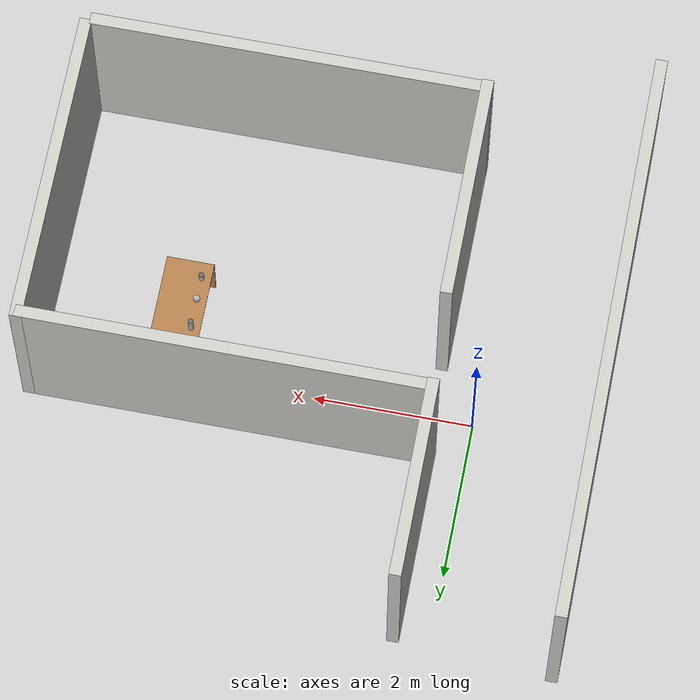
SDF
<?xml version='1.0'?>
<sdf version='1.6'>
<world name='laboratorio'>
  <gui>
    <camera name="user_camera">
      <pose>5.315925 -1.285646 1.856583 0 0.307999 2.827192</pose>
    </camera>
  </gui>
  <include>
    <uri>model://ground_plane</uri>
  </include>
  <include>
    <uri>model://sun</uri>
  </include>
  <include>
    <static>1</static>
    <pose>4.09 -1.25 0 0 0 0</pose>
    <uri>model://office_desk</uri>
    <name>office_desk01</name>
  </include>
  <include>
    <static>0</static>
    <pose>3.6 -0.35 0.85 0 0 0</pose>
    <uri>model://hsr_pringles</uri>
    <name>hsr_pringles_01</name>
  </include>
  <include>
    <static>0</static>
    <pose>3.6 -0.7 0.85 0 0 1</pose>
    <uri>model://apple</uri>
    <name>apple_01</name>
  </include>
  <include>
    <static>0</static>
    <pose>3.6 -1.0 0.85 0 0 0 1</pose>
    <uri>model://hsr_coke</uri>
    <name>hsr_coke_01</name>
  </include>
  <model name='biorobotica'>
    <pose frame=''>1.98298 -0.56 0 0 -0 0</pose>
    <link name='Wall_0'>
      <collision name='Wall_0_Collision'>
        <geometry>
          <box>
            <size>7.25 0.15 2.5</size>
          </box>
        </geometry>
        <pose frame=''>0 0 1.25 0 -0 0</pose>
      </collision>
      <visual name='Wall_0_Visual'>
        <pose frame=''>0 0 1.25 0 -0 0</pose>
        <geometry>
          <box>
            <size>7.25 0.15 2.5</size>
          </box>
        </geometry>
        <material>
          <script>
            <uri>file://media/materials/scripts/gazebo.material</uri>
            <name>Gazebo/CeilingTiled</name>
          </script>
          <ambient>0.921569 0.807843 0.615686 1</ambient>
        </material>
      </visual>
      <pose frame=''>-3.50298 0 0 0 -0 1.5708</pose>
    </link>
    <link name='Wall_2'>
      <collision name='Wall_2_Collision'>
        <geometry>
          <box>
            <size>2.85174 0.15 2.5</size>
          </box>
        </geometry>
        <pose frame=''>0 0 1.25 0 -0 0</pose>
      </collision>
      <visual name='Wall_2_Visual'>
        <pose frame=''>0 0 1.25 0 -0 0</pose>
        <geometry>
          <box>
            <size>2.85174 0.15 2.5</size>
          </box>
        </geometry>
        <material>
          <script>
            <uri>file://media/materials/scripts/gazebo.material</uri>
            <name>Gazebo/CeilingTiled</name>
          </script>
          <ambient>0.921569 0.807843 0.615686 1</ambient>
        </material>
      </visual>
      <pose frame=''>-1.47298 -1.53987 0 0 -0 1.5708</pose>
    </link>
    <link name='Wall_4'>
      <collision name='Wall_4_Collision'>
        <geometry>
          <box>
            <size>5 0.15 2.5</size>
          </box>
        </geometry>
        <pose frame=''>0 0 1.25 0 -0 0</pose>
      </collision>
      <visual name='Wall_4_Visual'>
        <pose frame=''>0 0 1.25 0 -0 0</pose>
        <geometry>
          <box>
            <size>5 0.15 2.5</size>
          </box>
        </geometry>
        <material>
          <script>
            <uri>file://media/materials/scripts/gazebo.material</uri>
            <name>Gazebo/CeilingTiled</name>
          </script>
          <ambient>0.921569 0.807843 0.615686 1</ambient>
        </material>
      </visual>
      <pose frame=''>0.952018 -2.87553 0 0 -0 0</pose>
    </link>
    <link name='Wall_6'>
      <collision name='Wall_6_Collision'>
        <geometry>
          <box>
            <size>4 0.15 2.5</size>
          </box>
        </geometry>
        <pose frame=''>0 0 1.25 0 -0 0</pose>
      </collision>
      <visual name='Wall_6_Visual'>
        <pose frame=''>0 0 1.25 0 -0 0</pose>
        <geometry>
          <box>
            <size>4 0.15 2.5</size>
          </box>
        </geometry>
        <material>
          <script>
            <uri>file://media/materials/scripts/gazebo.material</uri>
            <name>Gazebo/CeilingTiled</name>
          </script>
          <ambient>0.921569 0.807843 0.615686 1</ambient>
        </material>
      </visual>
      <pose frame=''>3.50254 -0.8542 0 0 -0 1.5708</pose>
    </link>
    <link name='Wall_7'>
      <collision name='Wall_7_Collision'>
        <geometry>
          <box>
            <size>5.0294 0.15 2.5</size>
          </box>
        </geometry>
        <pose frame=''>0 0 1.25 0 -0 0</pose>
      </collision>
      <visual name='Wall_7_Visual'>
        <pose frame=''>0 0 1.25 0 -0 0</pose>
        <geometry>
          <box>
            <size>5.0294 0.15 2.5</size>
          </box>
        </geometry>
        <material>
          <script>
            <uri>file://media/materials/scripts/gazebo.material</uri>
            <name>Gazebo/CeilingTiled</name>
          </script>
          <ambient>0.921569 0.807843 0.615686 1</ambient>
        </material>
      </visual>
      <pose frame=''>1.06328 1.0708 0 0 -0 3.14159</pose>
    </link>
    <link name='Wall_9'>
      <collision name='Wall_9_Collision'>
        <geometry>
          <box>
            <size>2.5 0.15 2.5</size>
          </box>
        </geometry>
        <pose frame=''>0 0 1.25 0 -0 0</pose>
      </collision>
      <visual name='Wall_9_Visual'>
        <pose frame=''>0 0 1.25 0 -0 0</pose>
        <geometry>
          <box>
            <size>2.5 0.15 2.5</size>
          </box>
        </geometry>
        <material>
          <script>
            <uri>file://media/materials/scripts/gazebo.material</uri>
            <name>Gazebo/CeilingTiled</name>
          </script>
          <ambient>0.921569 0.807843 0.615686 1</ambient>
        </material>
      </visual>
      <pose frame=''>-1.52498 2.23535 0 0 0 -1.5708</pose>
    </link>
    <static>1</static>
  </model>
</world>
</sdf>

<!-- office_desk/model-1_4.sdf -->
<sdf version="1.4">
    <model name='office_desk'>
      <link name='link'>
        <pose>0.0 0.0 0.0 0 0 0</pose>
        <inertial>
          <mass>10.0</mass>
          <inertia>
            <ixx>1</ixx>
            <ixy>0</ixy>
            <ixz>0</ixz>
            <iyy>1</iyy>
            <iyz>0</iyz>
            <izz>1</izz>
          </inertia>
        </inertial>
        <visual name='top_board'>
          <pose>-0.3 0.6 0.69 0 0 0</pose>
          <geometry>
            <box>
              <size>0.6 1.2 0.02</size>
            </box>
          </geometry>
          <material>
            <script>
              <uri>model://base_materials/wood/scripts/wood.material</uri>
              <name>base_materials/dark_wood</name>
            </script>
          </material>
        </visual>
        <collision name='collision_top_board'>
          <pose>-0.3 0.6 0.69 0 0 0</pose>
          <geometry>
            <box>
              <size>0.6 1.2 0.02</size>
            </box>
          </geometry>
          <max_contacts>10</max_contacts>
          <surface>
            <bounce/>
            <friction>
              <ode/>
            </friction>
            <contact>
              <ode/>
            </contact>
          </surface>
        </collision>
        <visual name='left_board'>
          <pose>-0.3 0.01 0.34 0 0 0</pose>
          <geometry>
            <box>
              <size>0.6 0.02 0.68</size>
            </box>
          </geometry>
          <material>
            <script>
              <uri>model://base_materials/wood/scripts/wood.material</uri>
              <name>base_materials/dark_wood</name>
            </script>
          </material>
        </visual>
        <collision name='collision_left_board'>
          <pose>-0.3 0.01 0.34 0 0 0</pose>
          <geometry>
            <box>
              <size>0.6 0.02 0.68</size>
            </box>
          </geometry>
          <max_contacts>10</max_contacts>
          <surface>
            <bounce/>
            <friction>
              <ode/>
            </friction>
            <contact>
              <ode/>
            </contact>
          </surface>
        </collision>
        <visual name='right_board'>
          <pose>-0.3 1.19 0.34 0 0 0</pose>
          <geometry>
            <box>
              <size>0.6 0.02 0.68</size>
            </box>
          </geometry>
          <material>
            <script>
              <uri>model://base_materials/wood/scripts/wood.material</uri>
              <name>base_materials/dark_wood</name>
            </script>
          </material>
        </visual>
        <collision name='collision_right_board'>
          <pose>-0.3 1.19 0.34 0 0 0</pose>
          <geometry>
            <box>
              <size>0.6 0.02 0.68</size>
            </box>
          </geometry>
          <max_contacts>10</max_contacts>
          <surface>
            <bounce/>
            <friction>
              <ode/>
            </friction>
            <contact>
              <ode/>
            </contact>
          </surface>
        </collision>
        <visual name='center_board'>
          <pose>-0.14 0.6 0.49 0 0 0</pose>
          <geometry>
            <box>
              <size>0.02 1.16 0.40</size>
            </box>
          </geometry>
          <material>
            <script>
              <uri>model://base_materials/wood/scripts/wood.material</uri>
              <name>base_materials/dark_wood</name>
            </script>
          </material>
        </visual>
        <collision name='ollision_center_board'>
          <pose>-0.14 0.6 0.49 0 0 0</pose>
          <geometry>
            <box>
              <size>0.02 1.16 0.40</size>
            </box>
          </geometry>
          <max_contacts>10</max_contacts>
          <surface>
            <bounce/>
            <friction>
              <ode/>
            </friction>
            <contact>
              <ode/>
            </contact>
          </surface>
        </collision>
        <velocity_decay>
          <linear>0</linear>
          <angular>0</angular>
        </velocity_decay>
        <self_collide>0</self_collide>
        <kinematic>0</kinematic>
        <gravity>1</gravity>
      </link>
      <static>1</static>
    </model>
</sdf>

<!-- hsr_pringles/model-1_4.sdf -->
<sdf version="1.4">
    <model name='hsr_pringles'>
      <link name='link'>
        <pose>0 0 0 0 0 0</pose>
        <inertial>
          <mass>0.19</mass>
          <inertia>
            <ixx>0.004491</ixx>
            <ixy>0</ixy>
            <ixz>0</ixz>
            <iyy>0.004491</iyy>
            <iyz>0</iyz>
            <izz>0.000103</izz>
          </inertia>
        </inertial>
        <visual name='hsr_pringles'>
          <pose>0.0 0.0 0.0 0 0 0</pose>
          <geometry>
            <mesh>
              <uri>model://hsr_pringles/meshes/hsr_pringles.dae</uri>
            </mesh>
          </geometry>
          <material/>
        </visual>
        <collision name='hsr_pringles'>
          <pose>0.0 0.0 0.0 0 0 0</pose>
          <geometry>
            <cylinder>
              <radius>0.033</radius>
              <length>0.225</length>
            </cylinder>
          </geometry>
          <max_contacts>10</max_contacts>
          <surface>
            <bounce>
              <restitution_coefficient>0.2</restitution_coefficient>
              <threshold>0</threshold>
            </bounce>
            <friction>
              <ode/>
            </friction>
            <contact>
              <ode>
                <max_vel>10</max_vel>
              </ode>
            </contact>
          </surface>
        </collision>
        <velocity_decay>
          <linear>0</linear>
          <angular>0</angular>
        </velocity_decay>
        <self_collide>0</self_collide>
        <kinematic>0</kinematic>
        <gravity>1</gravity>
      </link>
      <static>0</static>
    </model>
</sdf>

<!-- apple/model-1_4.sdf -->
<sdf version="1.4">
    <model name='apple'>
      <link name='link'>
        <pose>0 0 0 0 0 0</pose>
        <inertial>
          <mass>0.3</mass>
          <inertia>
            <ixx>0.000243</ixx>
            <ixy>0</ixy>
            <ixz>0</ixz>
            <iyy>0.000243</iyy>
            <iyz>0</iyz>
            <izz>0.000243</izz>
          </inertia>
        </inertial>
        <visual name='apple'>
          <pose>0.0 0.0 0.0 0 0 0</pose>
          <geometry>
            <mesh>
              <uri>model://apple/meshes/apple.dae</uri>
            </mesh>
          </geometry>
          <material/>
        </visual>
        <collision name='apple'>
          <pose>0.0 0.0 0.0 0 0 0</pose>
          <geometry>
            <sphere>
              <radius>0.045</radius>
            </sphere>
          </geometry>
          <max_contacts>10</max_contacts>
          <surface>
            <bounce>
              <restitution_coefficient>0.2</restitution_coefficient>
              <threshold>0</threshold>
            </bounce>
            <friction>
              <ode/>
            </friction>
            <contact>
              <ode>
                <max_vel>10</max_vel>
              </ode>
            </contact>
          </surface>
        </collision>
        <velocity_decay>
          <linear>0</linear>
          <angular>0</angular>
        </velocity_decay>
        <self_collide>0</self_collide>
        <kinematic>0</kinematic>
        <gravity>1</gravity>
      </link>
      <static>0</static>
    </model>
</sdf>

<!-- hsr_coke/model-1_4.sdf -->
<sdf version="1.4">
    <model name='hsr_coke'>
      <link name='link'>
        <pose>0 0 0 0 0 0</pose>
        <inertial>
          <mass>0.35</mass>
          <inertia>
            <ixx>0.001481</ixx>
            <ixy>0</ixy>
            <ixz>0</ixz>
            <iyy>0.001481</iyy>
            <iyz>0</iyz>
            <izz>0.000168</izz>
          </inertia>
        </inertial>
        <visual name='hsr_coke'>
          <pose>0.0 0.0 0.0 0 0 0</pose>
          <geometry>
            <mesh>
              <uri>model://hsr_coke/meshes/hsr_coke.dae</uri>
            </mesh>
          </geometry>
          <material/>
        </visual>
        <collision name='hsr_coke'>
          <pose>0.0 0.0 0.0 0 0 0</pose>
          <geometry>
            <cylinder>
              <radius>0.033</radius>
              <length>0.1235</length>
            </cylinder>
          </geometry>
          <max_contacts>10</max_contacts>
          <surface>
            <bounce>
              <restitution_coefficient>0.2</restitution_coefficient>
              <threshold>0</threshold>
            </bounce>
            <friction>
              <ode/>
            </friction>
            <contact>
              <ode>
                <max_vel>10</max_vel>
              </ode>
            </contact>
          </surface>
        </collision>
        <velocity_decay>
          <linear>0</linear>
          <angular>0</angular>
        </velocity_decay>
        <self_collide>0</self_collide>
        <kinematic>0</kinematic>
        <gravity>1</gravity>
      </link>
      <static>0</static>
    </model>
</sdf>
